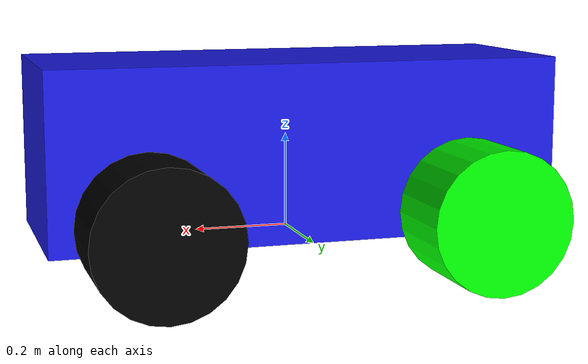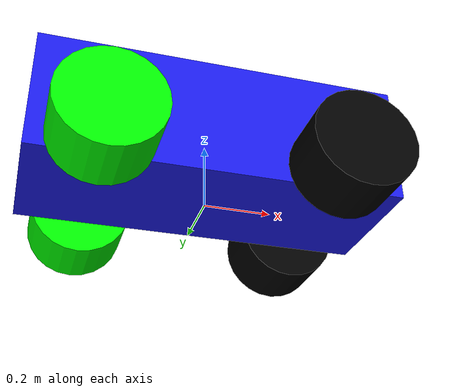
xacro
<?xml version="1.0"?>
<robot  xmlns:xacro="http://www.ros.org/wiki/xacro" name="bison">

    <xacro:include filename="$(find bison_description)/urdf/base.urdf.xacro" />

    <gazebo>
        <plugin name="gazebo_ros_control" filename="libgazebo_ros_control.so">
        <robotNamespace>/bison</robotNamespace>
        </plugin>
    </gazebo>

    <xacro:macro name="wheel_trans_macro" params="pos">
        <transmission name="${pos}_wheel_trans">
            <type>transmission_interface/SimpleTransmission</type>
            <actuator name="${pos}_wheel_motor">
                <mechanicalReduction>10</mechanicalReduction>
            </actuator>
            <joint name="${pos}_wheel_joint">
                <hardwareInterface>hardware_interface/VelocityJointInterface</hardwareInterface>
            </joint>
        </transmission>

        <gazebo reference="${pos}_wheel">
            <mu1 value="2.0"/>
            <mu2 value="1.0"/>
            <kp value="10000000.0" />
            <kd value="1.0" />
            <material>Gazebo/Black</material>
        </gazebo>
    </xacro:macro>

   <xacro:macro name="wheel_trans_macro_back" params="pos">
        <transmission name="${pos}_wheel_trans_back">
            <type>transmission_interface/SimpleTransmission</type>
            <actuator name="${pos}_wheel_motor_back">
                <mechanicalReduction>10</mechanicalReduction>
            </actuator>
            <joint name="${pos}_wheel_joint_back">
                <hardwareInterface>hardware_interface/VelocityJointInterface</hardwareInterface>
            </joint>
        </transmission>

        <gazebo reference="${pos}_wheel_back">
            <mu1 value="2.0"/>
            <mu2 value="1.0"/>
            <kp value="10000000.0" />
            <kd value="1.0" />
            <material>Gazebo/Yellow</material>
        </gazebo>
    </xacro:macro>

	<xacro:wheel_trans_macro pos="left" />
	<xacro:wheel_trans_macro pos="right" />

	<xacro:wheel_trans_macro_back pos="left" />
	<xacro:wheel_trans_macro_back pos="right" />

    <gazebo reference="base_link">
        <material>Gazebo/Blue</material>
    </gazebo>

</robot>

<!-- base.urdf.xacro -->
<robot xmlns:xacro="http://www.ros.org/wiki/xacro" name="bison">

    <!-- PARAMETRES -->
    <xacro:property name="base_length" value="1.08" />
    <xacro:property name="base_width" value="0.4" />
    <xacro:property name="base_height" value="0.37" />
    <xacro:property name="base_mass" value="2.0" />
    <xacro:property name="wheel_radius" value="0.15" />
    <xacro:property name="wheel_length" value="0.19" />
    <xacro:property name="wheel_mass" value="0.2" />
    <xacro:property name="wheel_position_X" value="0.34" />
    <xacro:property name="wheel_position_Z" value="0.055" />

    <!-- MATERIAUX -->
    <material name="gray">
        <color rgba="0.2 0.2 0.2 1.0"/>
    </material>

    <material name="black">
        <color rgba="0.0 0.0 0.0 1.0"/>
    </material>

    <material name="light_gray">
        <color rgba="0.6 0.6 0.6 1.0"/>
    </material>

    <material name="light_blue">
        <color rgba="0.1 0.1 0.9 1.0"/>
    </material>

    <material name="yellow">
        <color rgba="0 1 0 1"/>
    </material>

    <!-- MACROS -->
    <xacro:macro name="box_inertial" params="mass l w h">
        <inertial>
            <mass value="${mass}" />
            <inertia ixx="${mass/3*(w*w + h*h)}" ixy="${mass/4*l*w}" ixz="${mass/4*l*h}" iyy="${mass/3*(l*l + h*h)}" iyz="${mass/4*w*h}" izz="${mass/3*(l*l + w*w)}" />
        </inertial>
    </xacro:macro>

    <xacro:macro name="cylinder_inertial" params="mass r h">
        <inertial>
            <mass value="${mass}" />
            <inertia ixx="${mass/12*(3*r*r + h*h)}" ixy="0.0" ixz="0.0" iyy="${mass/12*(3*r*r + h*h)}" iyz="0.0" izz="${mass/2*(r*r)}" />
        </inertial>
    </xacro:macro>

    <xacro:macro name="spherus_inertial" params="mass r">
        <inertial>
            <mass value="${mass}" />
            <inertia ixx="${mass/5*2*(r*r)}" ixy="0.0" ixz="0.0" iyy="${mass/5*2*(r*r)}" iyz="0.0" izz="${mass/5*2*(r*r)}" />
        </inertial>
    </xacro:macro>

    <xacro:macro name="wheel_origin" params="side">
        <xacro:if value="${side == 'left'}">
            <origin xyz="0.0 ${-wheel_length/2} 0.0" rpy="${pi/2} 0.0 0.0"/>
        </xacro:if>
        <xacro:if value="${side == 'right'}">
            <origin xyz="0.0 ${wheel_length/2} 0.0" rpy="${pi/2} 0.0 0.0"/>
        </xacro:if>
    </xacro:macro>

    <xacro:macro name="wheel_joint_origin" params="side">
        <xacro:if value="${side == 'left'}">
            <origin xyz="${wheel_position_X} ${-base_width/2} ${wheel_position_Z}" />
        </xacro:if>
        <xacro:if value="${side == 'right'}">
            <origin xyz="${wheel_position_X} ${base_width/2} ${wheel_position_Z}" />
        </xacro:if>
    </xacro:macro>

    <xacro:macro name="wheel_joint_origin_back" params="side">
        <xacro:if value="${side == 'left'}">
            <origin xyz="${-wheel_position_X} ${-base_width/2} ${wheel_position_Z}" />
        </xacro:if>
        <xacro:if value="${side == 'right'}">
            <origin xyz="${-wheel_position_X} ${base_width/2} ${wheel_position_Z}" />
        </xacro:if>
    </xacro:macro>

    <xacro:macro name="wheel_macro" params="side *shape">
        <link name="${side}_wheel">
            <visual>
                <geometry>
                    <xacro:insert_block name="shape" />
                </geometry>
                <xacro:wheel_origin side="${side}" />
                <material name="black"/>
            </visual>
            <collision>
                <geometry>
                    <xacro:insert_block name="shape" />
                </geometry>
                <xacro:wheel_origin side="${side}" />
            </collision>
            <xacro:cylinder_inertial mass="${wheel_mass}" r="${wheel_radius}" h="${wheel_length}"/>
        </link>

        <joint name="${side}_wheel_joint" type="continuous">
            <xacro:wheel_joint_origin side="${side}" />
            <parent link="base_link"/>
            <child link="${side}_wheel"/>
            <axis xyz="0 1 0" />
        </joint>

    </xacro:macro>

    <xacro:macro name="wheel_macro_back" params="side *shape">
        <link name="${side}_wheel_back">
            <visual>
                <geometry>
                    <xacro:insert_block name="shape" />
                </geometry>
                <xacro:wheel_origin side="${side}" />
                <material name="yellow"/>
            </visual>
            <collision>
                <geometry>
                    <xacro:insert_block name="shape" />
                </geometry>
                <xacro:wheel_origin side="${side}" />
            </collision>
            <xacro:cylinder_inertial mass="${wheel_mass}" r="${wheel_radius}" h="${wheel_length}"/>
        </link>

        <joint name="${side}_wheel_joint_back" type="continuous">
            <xacro:wheel_joint_origin_back side="${side}" />
            <parent link="base_link"/>
            <child link="${side}_wheel_back"/>
            <axis xyz="0 1 0" />
        </joint>

    </xacro:macro>

    <!-- LINKS et JOINTS -->

    <link name="base_footprint"/>

    <link name="base_link">
        <visual>
            <geometry>
                <box size="${base_length} ${base_width} ${base_height}"/>

            </geometry>
            <origin xyz="0.0 0.0 ${base_height/2}"/>
            <material name="light_blue"/>
        </visual>

        <xacro:box_inertial mass="${base_mass}" l="${base_length}" w="${base_width}" h="${base_height}"/>

    </link>

    <joint name="base_link_joint" type="fixed">
        <parent link="base_link"/>
        <child link="base_footprint"/>
    </joint>

    <xacro:wheel_macro side="left">
        <cylinder length="${wheel_length}" radius="${wheel_radius}"/>
    </xacro:wheel_macro>

    <xacro:wheel_macro side="right">
        <cylinder length="${wheel_length}" radius="${wheel_radius}"/>
    </xacro:wheel_macro>

    <xacro:wheel_macro_back side="left">
        <cylinder length="${wheel_length}" radius="${wheel_radius}"/>
    </xacro:wheel_macro_back>

    <xacro:wheel_macro_back side="right">
        <cylinder length="${wheel_length}" radius="${wheel_radius}"/>
    </xacro:wheel_macro_back>

</robot>
